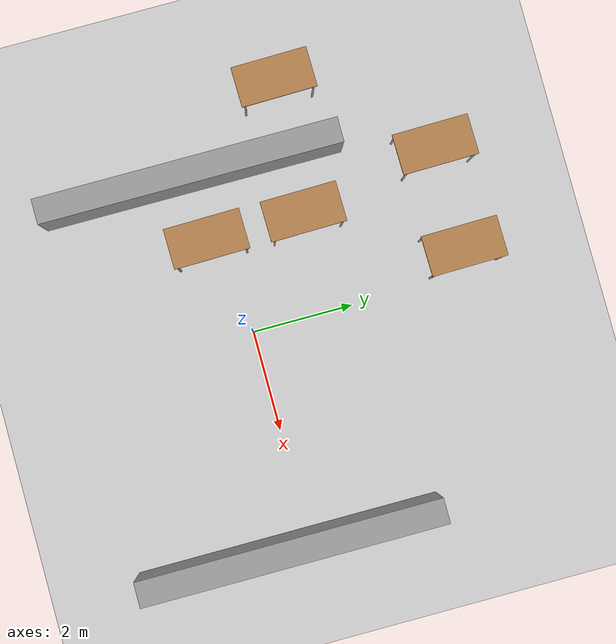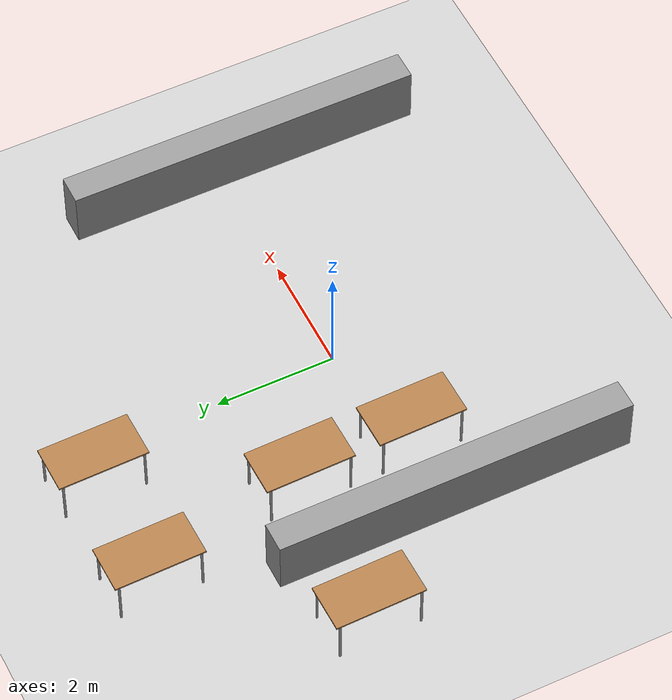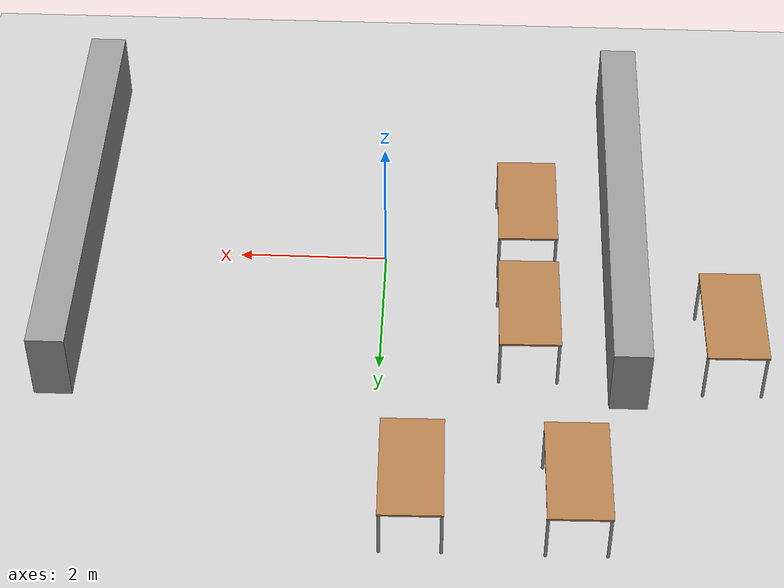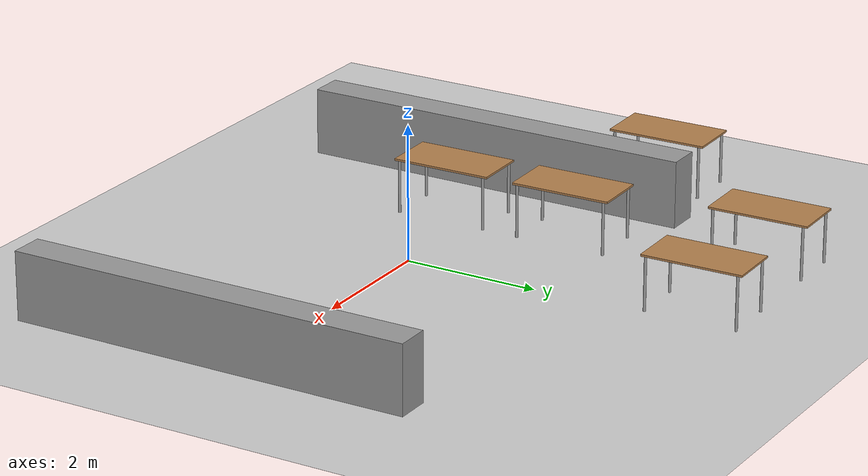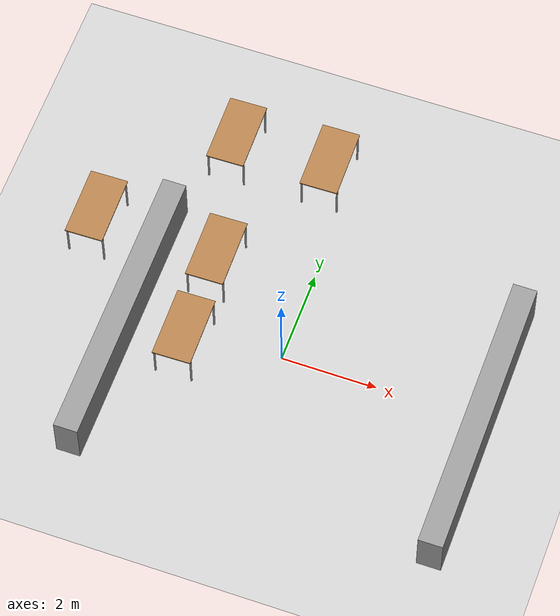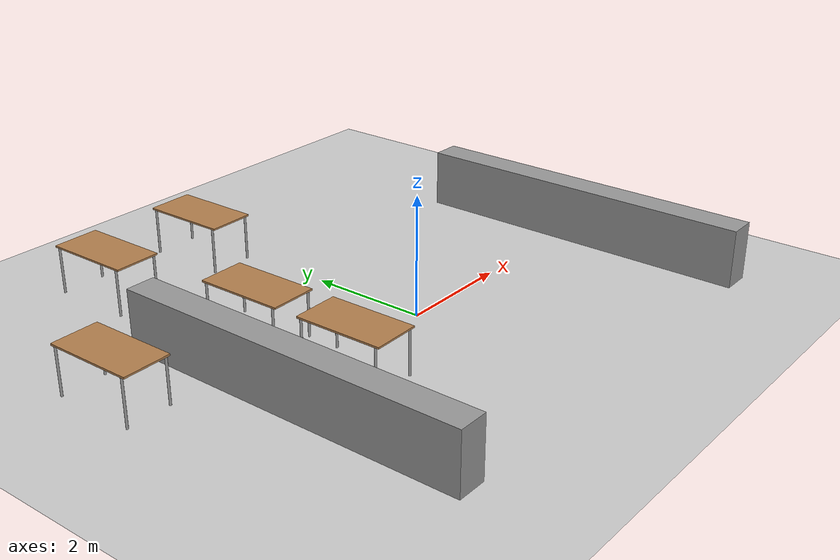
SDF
<sdf version="1.7">
 <world name="default">
  <model name="ground_plane">
   <static>1</static>
   <link name="link">
    <collision name="collision">
     <geometry><plane><normal>0 0 1</normal><size>100 100</size></plane></geometry>
     <surface>
      <contact><collide_bitmask>65535</collide_bitmask></contact>
      <friction><ode><mu>100</mu><mu2>50</mu2></ode></friction>
     </surface>
    </collision>
    <visual name="visual">
     <cast_shadows>0</cast_shadows>
     <geometry><plane><normal>0 0 1</normal><size>100 100</size></plane></geometry>
     <material>
      <script><uri>file://media/materials/scripts/gazebo.material</uri><name>Gazebo/Grey</name></script>
     </material>
    </visual>
   </link>
  </model>
  <model name="separador_pared">
   <pose>0.48579 -0.391509 0 0 -0 0</pose>
   <link name="Wall_0">
    <collision name="Wall_0_Collision">
     <geometry><box><size>6 0.5 1</size></box></geometry>
     <pose>0 0 0.5 0 -0 0</pose>
    </collision>
    <visual name="Wall_0_Visual">
     <pose>0 0 0.5 0 -0 0</pose>
     <geometry><box><size>6 0.5 1</size></box></geometry>
     <material>
      <script><uri>file://media/materials/scripts/gazebo.material</uri><name>Gazebo/Grey</name></script>
      <ambient>0.627451 0.580392 0.580392 1</ambient>
     </material>
     <meta><layer>0</layer></meta>
    </visual>
    <pose>3.7232 0.008937 0 0 -0 1.5708</pose>
   </link>
   <link name="Wall_2">
    <collision name="Wall_2_Collision">
     <geometry><box><size>6 0.5 1</size></box></geometry>
     <pose>0 0 0.5 0 -0 0</pose>
    </collision>
    <visual name="Wall_2_Visual">
     <pose>0 0 0.5 0 -0 0</pose>
     <geometry><box><size>6 0.5 1</size></box></geometry>
     <material>
      <script><uri>file://media/materials/scripts/gazebo.material</uri><name>Gazebo/Grey</name></script>
      <ambient>0.368627 0.360784 0.392157 1</ambient>
     </material>
     <meta><layer>0</layer></meta>
    </visual>
    <pose>-3.7232 -0.008937 0 0 -0 -1.5708</pose>
   </link>
   <static>1</static>
  </model>
  <model name="table_clone_clone_1">
   <link name="link">
    <inertial>
     <mass>1</mass>
     <pose>1.2 0 0.8 0 -0 0</pose>
     <inertia><ixx>1</ixx><ixy>0</ixy><ixz>0</ixz><iyy>1</iyy><iyz>0</iyz><izz>1</izz></inertia>
    </inertial>
    <visual name="back_right_leg">
     <pose>-0.68 -0.38 0.4 0 -0 0</pose>
     <geometry><cylinder><radius>0.02</radius><length>0.8</length></cylinder></geometry>
     <material>
      <script><uri>file://media/materials/scripts/gazebo.material</uri><name>Gazebo/Grey</name></script>
      <shader type="pixel"><normal_map>__default__</normal_map></shader>
      <ambient>0.3 0.3 0.3 1</ambient>
      <diffuse>0.7 0.7 0.7 1</diffuse>
      <specular>0.01 0.01 0.01 1</specular>
      <emissive>0 0 0 1</emissive>
     </material>
    </visual>
    <visual name="front_right_leg">
     <pose>0.68 -0.38 0.4 0 -0 0</pose>
     <geometry><cylinder><radius>0.02</radius><length>0.8</length></cylinder></geometry>
     <material>
      <script><uri>file://media/materials/scripts/gazebo.material</uri><name>Gazebo/Grey</name></script>
      <shader type="pixel"><normal_map>__default__</normal_map></shader>
      <ambient>0.3 0.3 0.3 1</ambient>
      <diffuse>0.7 0.7 0.7 1</diffuse>
      <specular>0.01 0.01 0.01 1</specular>
      <emissive>0 0 0 1</emissive>
     </material>
    </visual>
    <visual name="visual1">
     <pose>0 0 0.8 0 -0 0</pose>
     <geometry><box><size>1.5 0.8 0.03</size></box></geometry>
     <material>
      <script><uri>file://media/materials/scripts/gazebo.material</uri><name>Gazebo/Wood</name></script>
      <shader type="pixel"><normal_map>__default__</normal_map></shader>
      <ambient>1 1 1 1</ambient>
      <diffuse>1 1 1 1</diffuse>
      <specular>0.2 0.2 0.2 1</specular>
      <emissive>0 0 0 1</emissive>
     </material>
    </visual>
    <visual name="front_left_leg">
     <pose>0.68 0.38 0.4 0 -0 0</pose>
     <geometry><cylinder><radius>0.02</radius><length>0.8</length></cylinder></geometry>
     <material>
      <script><uri>file://media/materials/scripts/gazebo.material</uri><name>Gazebo/Grey</name></script>
      <shader type="pixel"><normal_map>__default__</normal_map></shader>
      <ambient>0.3 0.3 0.3 1</ambient>
      <diffuse>0.7 0.7 0.7 1</diffuse>
      <specular>0.01 0.01 0.01 1</specular>
      <emissive>0 0 0 1</emissive>
     </material>
    </visual>
    <visual name="back_left_leg">
     <pose>-0.68 0.38 0.4 0 -0 0</pose>
     <geometry><cylinder><radius>0.02</radius><length>0.8</length></cylinder></geometry>
     <material>
      <script><uri>file://media/materials/scripts/gazebo.material</uri><name>Gazebo/Grey</name></script>
      <shader type="pixel"><normal_map>__default__</normal_map></shader>
      <ambient>0.3 0.3 0.3 1</ambient>
      <diffuse>0.7 0.7 0.7 1</diffuse>
      <specular>0.01 0.01 0.01 1</specular>
      <emissive>0 0 0 1</emissive>
     </material>
    </visual>
    <collision name="back_right_leg">
     <pose>-0.68 -0.38 0.4 0 -0 0</pose>
     <geometry><cylinder><radius>0.02</radius><length>0.8</length></cylinder></geometry>
     <surface>
      <friction>
       <ode><mu>1</mu><mu2>1</mu2><fdir1>0 0 0</fdir1><slip1>0</slip1><slip2>0</slip2></ode>
       <torsional>
        <coefficient>1</coefficient>
        <patch_radius>0</patch_radius>
        <surface_radius>0</surface_radius>
        <use_patch_radius>1</use_patch_radius>
        <ode><slip>0</slip></ode>
       </torsional>
      </friction>
      <bounce><restitution_coefficient>0</restitution_coefficient><threshold>1e+06</threshold></bounce>
      <contact>
       <collide_without_contact>0</collide_without_contact>
       <collide_without_contact_bitmask>1</collide_without_contact_bitmask>
       <collide_bitmask>1</collide_bitmask>
       <ode>
        <soft_cfm>0</soft_cfm>
        <soft_erp>0.2</soft_erp>
        <kp>1e+13</kp>
        <kd>1</kd>
        <max_vel>0.01</max_vel>
        <min_depth>0</min_depth>
       </ode>
       <bullet>
        <split_impulse>1</split_impulse>
        <split_impulse_penetration_threshold>-0.01</split_impulse_penetration_threshold>
        <soft_cfm>0</soft_cfm>
        <soft_erp>0.2</soft_erp>
        <kp>1e+13</kp>
        <kd>1</kd>
       </bullet>
      </contact>
     </surface>
    </collision>
    <collision name="front_left_leg">
     <pose>0.68 0.38 0.4 0 -0 0</pose>
     <geometry><cylinder><radius>0.02</radius><length>0.8</length></cylinder></geometry>
     <surface>
      <friction>
       <ode><mu>1</mu><mu2>1</mu2><fdir1>0 0 0</fdir1><slip1>0</slip1><slip2>0</slip2></ode>
       <torsional>
        <coefficient>1</coefficient>
        <patch_radius>0</patch_radius>
        <surface_radius>0</surface_radius>
        <use_patch_radius>1</use_patch_radius>
        <ode><slip>0</slip></ode>
       </torsional>
      </friction>
      <bounce><restitution_coefficient>0</restitution_coefficient><threshold>1e+06</threshold></bounce>
      <contact>
       <collide_without_contact>0</collide_without_contact>
       <collide_without_contact_bitmask>1</collide_without_contact_bitmask>
       <collide_bitmask>1</collide_bitmask>
       <ode>
        <soft_cfm>0</soft_cfm>
        <soft_erp>0.2</soft_erp>
        <kp>1e+13</kp>
        <kd>1</kd>
        <max_vel>0.01</max_vel>
        <min_depth>0</min_depth>
       </ode>
       <bullet>
        <split_impulse>1</split_impulse>
        <split_impulse_penetration_threshold>-0.01</split_impulse_penetration_threshold>
        <soft_cfm>0</soft_cfm>
        <soft_erp>0.2</soft_erp>
        <kp>1e+13</kp>
        <kd>1</kd>
       </bullet>
      </contact>
     </surface>
    </collision>
    <collision name="back_left_leg">
     <pose>-0.68 0.38 0.4 0 -0 0</pose>
     <geometry><cylinder><radius>0.02</radius><length>0.8</length></cylinder></geometry>
     <surface>
      <friction>
       <ode><mu>1</mu><mu2>1</mu2><fdir1>0 0 0</fdir1><slip1>0</slip1><slip2>0</slip2></ode>
       <torsional>
        <coefficient>1</coefficient>
        <patch_radius>0</patch_radius>
        <surface_radius>0</surface_radius>
        <use_patch_radius>1</use_patch_radius>
        <ode><slip>0</slip></ode>
       </torsional>
      </friction>
      <bounce><restitution_coefficient>0</restitution_coefficient><threshold>1e+06</threshold></bounce>
      <contact>
       <collide_without_contact>0</collide_without_contact>
       <collide_without_contact_bitmask>1</collide_without_contact_bitmask>
       <collide_bitmask>1</collide_bitmask>
       <ode>
        <soft_cfm>0</soft_cfm>
        <soft_erp>0.2</soft_erp>
        <kp>1e+13</kp>
        <kd>1</kd>
        <max_vel>0.01</max_vel>
        <min_depth>0</min_depth>
       </ode>
       <bullet>
        <split_impulse>1</split_impulse>
        <split_impulse_penetration_threshold>-0.01</split_impulse_penetration_threshold>
        <soft_cfm>0</soft_cfm>
        <soft_erp>0.2</soft_erp>
        <kp>1e+13</kp>
        <kd>1</kd>
       </bullet>
      </contact>
     </surface>
    </collision>
    <collision name="surface">
     <pose>0 0 0.8 0 -0 0</pose>
     <geometry><box><size>1.5 0.8 0.03</size></box></geometry>
     <surface>
      <friction>
       <ode><mu>0.6</mu><mu2>0.6</mu2><fdir1>0 0 0</fdir1><slip1>0</slip1><slip2>0</slip2></ode>
       <torsional>
        <coefficient>1</coefficient>
        <patch_radius>0</patch_radius>
        <surface_radius>0</surface_radius>
        <use_patch_radius>1</use_patch_radius>
        <ode><slip>0</slip></ode>
       </torsional>
      </friction>
      <bounce><restitution_coefficient>0</restitution_coefficient><threshold>1e+06</threshold></bounce>
      <contact>
       <collide_without_contact>0</collide_without_contact>
       <collide_without_contact_bitmask>1</collide_without_contact_bitmask>
       <collide_bitmask>1</collide_bitmask>
       <ode>
        <soft_cfm>0</soft_cfm>
        <soft_erp>0.2</soft_erp>
        <kp>1e+13</kp>
        <kd>1</kd>
        <max_vel>0.01</max_vel>
        <min_depth>0</min_depth>
       </ode>
       <bullet>
        <split_impulse>1</split_impulse>
        <split_impulse_penetration_threshold>-0.01</split_impulse_penetration_threshold>
        <soft_cfm>0</soft_cfm>
        <soft_erp>0.2</soft_erp>
        <kp>1e+13</kp>
        <kd>1</kd>
       </bullet>
      </contact>
     </surface>
    </collision>
    <collision name="front_right_leg">
     <pose>0.68 -0.38 0.4 0 -0 0</pose>
     <geometry><cylinder><radius>0.02</radius><length>0.8</length></cylinder></geometry>
     <surface>
      <friction>
       <ode><mu>1</mu><mu2>1</mu2><fdir1>0 0 0</fdir1><slip1>0</slip1><slip2>0</slip2></ode>
       <torsional>
        <coefficient>1</coefficient>
        <patch_radius>0</patch_radius>
        <surface_radius>0</surface_radius>
        <use_patch_radius>1</use_patch_radius>
        <ode><slip>0</slip></ode>
       </torsional>
      </friction>
      <bounce><restitution_coefficient>0</restitution_coefficient><threshold>1e+06</threshold></bounce>
      <contact>
       <collide_without_contact>0</collide_without_contact>
       <collide_without_contact_bitmask>1</collide_without_contact_bitmask>
       <collide_bitmask>1</collide_bitmask>
       <ode>
        <soft_cfm>0</soft_cfm>
        <soft_erp>0.2</soft_erp>
        <kp>1e+13</kp>
        <kd>1</kd>
        <max_vel>0.01</max_vel>
        <min_depth>0</min_depth>
       </ode>
       <bullet>
        <split_impulse>1</split_impulse>
        <split_impulse_penetration_threshold>-0.01</split_impulse_penetration_threshold>
        <soft_cfm>0</soft_cfm>
        <soft_erp>0.2</soft_erp>
        <kp>1e+13</kp>
        <kd>1</kd>
       </bullet>
      </contact>
     </surface>
    </collision>
   </link>
   <static>1</static>
   <pose>-2.51872 4.29115 0 0 0 -1.55553</pose>
  </model>
  <model name="table_clone_clone_2">
   <link name="link">
    <inertial>
     <mass>1</mass>
     <pose>1.2 0 0.8 0 -0 0</pose>
     <inertia><ixx>1</ixx><ixy>0</ixy><ixz>0</ixz><iyy>1</iyy><iyz>0</iyz><izz>1</izz></inertia>
    </inertial>
    <visual name="back_right_leg">
     <pose>-0.68 -0.38 0.4 0 -0 0</pose>
     <geometry><cylinder><radius>0.02</radius><length>0.8</length></cylinder></geometry>
     <material>
      <script><uri>file://media/materials/scripts/gazebo.material</uri><name>Gazebo/Grey</name></script>
      <shader type="pixel"><normal_map>__default__</normal_map></shader>
      <ambient>0.3 0.3 0.3 1</ambient>
      <diffuse>0.7 0.7 0.7 1</diffuse>
      <specular>0.01 0.01 0.01 1</specular>
      <emissive>0 0 0 1</emissive>
     </material>
    </visual>
    <visual name="front_right_leg">
     <pose>0.68 -0.38 0.4 0 -0 0</pose>
     <geometry><cylinder><radius>0.02</radius><length>0.8</length></cylinder></geometry>
     <material>
      <script><uri>file://media/materials/scripts/gazebo.material</uri><name>Gazebo/Grey</name></script>
      <shader type="pixel"><normal_map>__default__</normal_map></shader>
      <ambient>0.3 0.3 0.3 1</ambient>
      <diffuse>0.7 0.7 0.7 1</diffuse>
      <specular>0.01 0.01 0.01 1</specular>
      <emissive>0 0 0 1</emissive>
     </material>
    </visual>
    <visual name="visual1">
     <pose>0 0 0.8 0 -0 0</pose>
     <geometry><box><size>1.5 0.8 0.03</size></box></geometry>
     <material>
      <script><uri>file://media/materials/scripts/gazebo.material</uri><name>Gazebo/Wood</name></script>
      <shader type="pixel"><normal_map>__default__</normal_map></shader>
      <ambient>1 1 1 1</ambient>
      <diffuse>1 1 1 1</diffuse>
      <specular>0.2 0.2 0.2 1</specular>
      <emissive>0 0 0 1</emissive>
     </material>
    </visual>
    <visual name="front_left_leg">
     <pose>0.68 0.38 0.4 0 -0 0</pose>
     <geometry><cylinder><radius>0.02</radius><length>0.8</length></cylinder></geometry>
     <material>
      <script><uri>file://media/materials/scripts/gazebo.material</uri><name>Gazebo/Grey</name></script>
      <shader type="pixel"><normal_map>__default__</normal_map></shader>
      <ambient>0.3 0.3 0.3 1</ambient>
      <diffuse>0.7 0.7 0.7 1</diffuse>
      <specular>0.01 0.01 0.01 1</specular>
      <emissive>0 0 0 1</emissive>
     </material>
    </visual>
    <visual name="back_left_leg">
     <pose>-0.68 0.38 0.4 0 -0 0</pose>
     <geometry><cylinder><radius>0.02</radius><length>0.8</length></cylinder></geometry>
     <material>
      <script><uri>file://media/materials/scripts/gazebo.material</uri><name>Gazebo/Grey</name></script>
      <shader type="pixel"><normal_map>__default__</normal_map></shader>
      <ambient>0.3 0.3 0.3 1</ambient>
      <diffuse>0.7 0.7 0.7 1</diffuse>
      <specular>0.01 0.01 0.01 1</specular>
      <emissive>0 0 0 1</emissive>
     </material>
    </visual>
    <collision name="back_right_leg">
     <pose>-0.68 -0.38 0.4 0 -0 0</pose>
     <geometry><cylinder><radius>0.02</radius><length>0.8</length></cylinder></geometry>
     <surface>
      <friction>
       <ode><mu>1</mu><mu2>1</mu2><fdir1>0 0 0</fdir1><slip1>0</slip1><slip2>0</slip2></ode>
       <torsional>
        <coefficient>1</coefficient>
        <patch_radius>0</patch_radius>
        <surface_radius>0</surface_radius>
        <use_patch_radius>1</use_patch_radius>
        <ode><slip>0</slip></ode>
       </torsional>
      </friction>
      <bounce><restitution_coefficient>0</restitution_coefficient><threshold>1e+06</threshold></bounce>
      <contact>
       <collide_without_contact>0</collide_without_contact>
       <collide_without_contact_bitmask>1</collide_without_contact_bitmask>
       <collide_bitmask>1</collide_bitmask>
       <ode>
        <soft_cfm>0</soft_cfm>
        <soft_erp>0.2</soft_erp>
        <kp>1e+13</kp>
        <kd>1</kd>
        <max_vel>0.01</max_vel>
        <min_depth>0</min_depth>
       </ode>
       <bullet>
        <split_impulse>1</split_impulse>
        <split_impulse_penetration_threshold>-0.01</split_impulse_penetration_threshold>
        <soft_cfm>0</soft_cfm>
        <soft_erp>0.2</soft_erp>
        <kp>1e+13</kp>
        <kd>1</kd>
       </bullet>
      </contact>
     </surface>
    </collision>
    <collision name="front_left_leg">
     <pose>0.68 0.38 0.4 0 -0 0</pose>
     <geometry><cylinder><radius>0.02</radius><length>0.8</length></cylinder></geometry>
     <surface>
      <friction>
       <ode><mu>1</mu><mu2>1</mu2><fdir1>0 0 0</fdir1><slip1>0</slip1><slip2>0</slip2></ode>
       <torsional>
        <coefficient>1</coefficient>
        <patch_radius>0</patch_radius>
        <surface_radius>0</surface_radius>
        <use_patch_radius>1</use_patch_radius>
        <ode><slip>0</slip></ode>
       </torsional>
      </friction>
      <bounce><restitution_coefficient>0</restitution_coefficient><threshold>1e+06</threshold></bounce>
      <contact>
       <collide_without_contact>0</collide_without_contact>
       <collide_without_contact_bitmask>1</collide_without_contact_bitmask>
       <collide_bitmask>1</collide_bitmask>
       <ode>
        <soft_cfm>0</soft_cfm>
        <soft_erp>0.2</soft_erp>
        <kp>1e+13</kp>
        <kd>1</kd>
        <max_vel>0.01</max_vel>
        <min_depth>0</min_depth>
       </ode>
       <bullet>
        <split_impulse>1</split_impulse>
        <split_impulse_penetration_threshold>-0.01</split_impulse_penetration_threshold>
        <soft_cfm>0</soft_cfm>
        <soft_erp>0.2</soft_erp>
        <kp>1e+13</kp>
        <kd>1</kd>
       </bullet>
      </contact>
     </surface>
    </collision>
    <collision name="back_left_leg">
     <pose>-0.68 0.38 0.4 0 -0 0</pose>
     <geometry><cylinder><radius>0.02</radius><length>0.8</length></cylinder></geometry>
     <surface>
      <friction>
       <ode><mu>1</mu><mu2>1</mu2><fdir1>0 0 0</fdir1><slip1>0</slip1><slip2>0</slip2></ode>
       <torsional>
        <coefficient>1</coefficient>
        <patch_radius>0</patch_radius>
        <surface_radius>0</surface_radius>
        <use_patch_radius>1</use_patch_radius>
        <ode><slip>0</slip></ode>
       </torsional>
      </friction>
      <bounce><restitution_coefficient>0</restitution_coefficient><threshold>1e+06</threshold></bounce>
      <contact>
       <collide_without_contact>0</collide_without_contact>
       <collide_without_contact_bitmask>1</collide_without_contact_bitmask>
       <collide_bitmask>1</collide_bitmask>
       <ode>
        <soft_cfm>0</soft_cfm>
        <soft_erp>0.2</soft_erp>
        <kp>1e+13</kp>
        <kd>1</kd>
        <max_vel>0.01</max_vel>
        <min_depth>0</min_depth>
       </ode>
       <bullet>
        <split_impulse>1</split_impulse>
        <split_impulse_penetration_threshold>-0.01</split_impulse_penetration_threshold>
        <soft_cfm>0</soft_cfm>
        <soft_erp>0.2</soft_erp>
        <kp>1e+13</kp>
        <kd>1</kd>
       </bullet>
      </contact>
     </surface>
    </collision>
    <collision name="surface">
     <pose>0 0 0.8 0 -0 0</pose>
     <geometry><box><size>1.5 0.8 0.03</size></box></geometry>
     <surface>
      <friction>
       <ode><mu>0.6</mu><mu2>0.6</mu2><fdir1>0 0 0</fdir1><slip1>0</slip1><slip2>0</slip2></ode>
       <torsional>
        <coefficient>1</coefficient>
        <patch_radius>0</patch_radius>
        <surface_radius>0</surface_radius>
        <use_patch_radius>1</use_patch_radius>
        <ode><slip>0</slip></ode>
       </torsional>
      </friction>
      <bounce><restitution_coefficient>0</restitution_coefficient><threshold>1e+06</threshold></bounce>
      <contact>
       <collide_without_contact>0</collide_without_contact>
       <collide_without_contact_bitmask>1</collide_without_contact_bitmask>
       <collide_bitmask>1</collide_bitmask>
       <ode>
        <soft_cfm>0</soft_cfm>
        <soft_erp>0.2</soft_erp>
        <kp>1e+13</kp>
        <kd>1</kd>
        <max_vel>0.01</max_vel>
        <min_depth>0</min_depth>
       </ode>
       <bullet>
        <split_impulse>1</split_impulse>
        <split_impulse_penetration_threshold>-0.01</split_impulse_penetration_threshold>
        <soft_cfm>0</soft_cfm>
        <soft_erp>0.2</soft_erp>
        <kp>1e+13</kp>
        <kd>1</kd>
       </bullet>
      </contact>
     </surface>
    </collision>
    <collision name="front_right_leg">
     <pose>0.68 -0.38 0.4 0 -0 0</pose>
     <geometry><cylinder><radius>0.02</radius><length>0.8</length></cylinder></geometry>
     <surface>
      <friction>
       <ode><mu>1</mu><mu2>1</mu2><fdir1>0 0 0</fdir1><slip1>0</slip1><slip2>0</slip2></ode>
       <torsional>
        <coefficient>1</coefficient>
        <patch_radius>0</patch_radius>
        <surface_radius>0</surface_radius>
        <use_patch_radius>1</use_patch_radius>
        <ode><slip>0</slip></ode>
       </torsional>
      </friction>
      <bounce><restitution_coefficient>0</restitution_coefficient><threshold>1e+06</threshold></bounce>
      <contact>
       <collide_without_contact>0</collide_without_contact>
       <collide_without_contact_bitmask>1</collide_without_contact_bitmask>
       <collide_bitmask>1</collide_bitmask>
       <ode>
        <soft_cfm>0</soft_cfm>
        <soft_erp>0.2</soft_erp>
        <kp>1e+13</kp>
        <kd>1</kd>
        <max_vel>0.01</max_vel>
        <min_depth>0</min_depth>
       </ode>
       <bullet>
        <split_impulse>1</split_impulse>
        <split_impulse_penetration_threshold>-0.01</split_impulse_penetration_threshold>
        <soft_cfm>0</soft_cfm>
        <soft_erp>0.2</soft_erp>
        <kp>1e+13</kp>
        <kd>1</kd>
       </bullet>
      </contact>
     </surface>
    </collision>
   </link>
   <static>1</static>
   <pose>-1.93807 1.51938 0 0 0 -1.55553</pose>
  </model>
  <model name="table_clone_clone_3">
   <link name="link">
    <inertial>
     <mass>1</mass>
     <pose>1.2 0 0.8 0 -0 0</pose>
     <inertia><ixx>1</ixx><ixy>0</ixy><ixz>0</ixz><iyy>1</iyy><iyz>0</iyz><izz>1</izz></inertia>
    </inertial>
    <visual name="back_right_leg">
     <pose>-0.68 -0.38 0.4 0 -0 0</pose>
     <geometry><cylinder><radius>0.02</radius><length>0.8</length></cylinder></geometry>
     <material>
      <script><uri>file://media/materials/scripts/gazebo.material</uri><name>Gazebo/Grey</name></script>
      <shader type="pixel"><normal_map>__default__</normal_map></shader>
      <ambient>0.3 0.3 0.3 1</ambient>
      <diffuse>0.7 0.7 0.7 1</diffuse>
      <specular>0.01 0.01 0.01 1</specular>
      <emissive>0 0 0 1</emissive>
     </material>
    </visual>
    <visual name="front_right_leg">
     <pose>0.68 -0.38 0.4 0 -0 0</pose>
     <geometry><cylinder><radius>0.02</radius><length>0.8</length></cylinder></geometry>
     <material>
      <script><uri>file://media/materials/scripts/gazebo.material</uri><name>Gazebo/Grey</name></script>
      <shader type="pixel"><normal_map>__default__</normal_map></shader>
      <ambient>0.3 0.3 0.3 1</ambient>
      <diffuse>0.7 0.7 0.7 1</diffuse>
      <specular>0.01 0.01 0.01 1</specular>
      <emissive>0 0 0 1</emissive>
     </material>
    </visual>
    <visual name="visual1">
     <pose>0 0 0.8 0 -0 0</pose>
     <geometry><box><size>1.5 0.8 0.03</size></box></geometry>
     <material>
      <script><uri>file://media/materials/scripts/gazebo.material</uri><name>Gazebo/Wood</name></script>
      <shader type="pixel"><normal_map>__default__</normal_map></shader>
      <ambient>1 1 1 1</ambient>
      <diffuse>1 1 1 1</diffuse>
      <specular>0.2 0.2 0.2 1</specular>
      <emissive>0 0 0 1</emissive>
     </material>
    </visual>
    <visual name="front_left_leg">
     <pose>0.68 0.38 0.4 0 -0 0</pose>
     <geometry><cylinder><radius>0.02</radius><length>0.8</length></cylinder></geometry>
     <material>
      <script><uri>file://media/materials/scripts/gazebo.material</uri><name>Gazebo/Grey</name></script>
      <shader type="pixel"><normal_map>__default__</normal_map></shader>
      <ambient>0.3 0.3 0.3 1</ambient>
      <diffuse>0.7 0.7 0.7 1</diffuse>
      <specular>0.01 0.01 0.01 1</specular>
      <emissive>0 0 0 1</emissive>
     </material>
    </visual>
    <visual name="back_left_leg">
     <pose>-0.68 0.38 0.4 0 -0 0</pose>
     <geometry><cylinder><radius>0.02</radius><length>0.8</length></cylinder></geometry>
     <material>
      <script><uri>file://media/materials/scripts/gazebo.material</uri><name>Gazebo/Grey</name></script>
      <shader type="pixel"><normal_map>__default__</normal_map></shader>
      <ambient>0.3 0.3 0.3 1</ambient>
      <diffuse>0.7 0.7 0.7 1</diffuse>
      <specular>0.01 0.01 0.01 1</specular>
      <emissive>0 0 0 1</emissive>
     </material>
    </visual>
    <collision name="back_right_leg">
     <pose>-0.68 -0.38 0.4 0 -0 0</pose>
     <geometry><cylinder><radius>0.02</radius><length>0.8</length></cylinder></geometry>
     <surface>
      <friction>
       <ode><mu>1</mu><mu2>1</mu2><fdir1>0 0 0</fdir1><slip1>0</slip1><slip2>0</slip2></ode>
       <torsional>
        <coefficient>1</coefficient>
        <patch_radius>0</patch_radius>
        <surface_radius>0</surface_radius>
        <use_patch_radius>1</use_patch_radius>
        <ode><slip>0</slip></ode>
       </torsional>
      </friction>
      <bounce><restitution_coefficient>0</restitution_coefficient><threshold>1e+06</threshold></bounce>
      <contact>
       <collide_without_contact>0</collide_without_contact>
       <collide_without_contact_bitmask>1</collide_without_contact_bitmask>
       <collide_bitmask>1</collide_bitmask>
       <ode>
        <soft_cfm>0</soft_cfm>
        <soft_erp>0.2</soft_erp>
        <kp>1e+13</kp>
        <kd>1</kd>
        <max_vel>0.01</max_vel>
        <min_depth>0</min_depth>
       </ode>
       <bullet>
        <split_impulse>1</split_impulse>
        <split_impulse_penetration_threshold>-0.01</split_impulse_penetration_threshold>
        <soft_cfm>0</soft_cfm>
        <soft_erp>0.2</soft_erp>
        <kp>1e+13</kp>
        <kd>1</kd>
       </bullet>
      </contact>
     </surface>
    </collision>
    <collision name="front_left_leg">
     <pose>0.68 0.38 0.4 0 -0 0</pose>
     <geometry><cylinder><radius>0.02</radius><length>0.8</length></cylinder></geometry>
     <surface>
      <friction>
       <ode><mu>1</mu><mu2>1</mu2><fdir1>0 0 0</fdir1><slip1>0</slip1><slip2>0</slip2></ode>
       <torsional>
        <coefficient>1</coefficient>
        <patch_radius>0</patch_radius>
        <surface_radius>0</surface_radius>
        <use_patch_radius>1</use_patch_radius>
        <ode><slip>0</slip></ode>
       </torsional>
      </friction>
      <bounce><restitution_coefficient>0</restitution_coefficient><threshold>1e+06</threshold></bounce>
      <contact>
       <collide_without_contact>0</collide_without_contact>
       <collide_without_contact_bitmask>1</collide_without_contact_bitmask>
       <collide_bitmask>1</collide_bitmask>
       <ode>
        <soft_cfm>0</soft_cfm>
        <soft_erp>0.2</soft_erp>
        <kp>1e+13</kp>
        <kd>1</kd>
        <max_vel>0.01</max_vel>
        <min_depth>0</min_depth>
       </ode>
       <bullet>
        <split_impulse>1</split_impulse>
        <split_impulse_penetration_threshold>-0.01</split_impulse_penetration_threshold>
        <soft_cfm>0</soft_cfm>
        <soft_erp>0.2</soft_erp>
        <kp>1e+13</kp>
        <kd>1</kd>
       </bullet>
      </contact>
     </surface>
    </collision>
    <collision name="back_left_leg">
     <pose>-0.68 0.38 0.4 0 -0 0</pose>
     <geometry><cylinder><radius>0.02</radius><length>0.8</length></cylinder></geometry>
     <surface>
      <friction>
       <ode><mu>1</mu><mu2>1</mu2><fdir1>0 0 0</fdir1><slip1>0</slip1><slip2>0</slip2></ode>
       <torsional>
        <coefficient>1</coefficient>
        <patch_radius>0</patch_radius>
        <surface_radius>0</surface_radius>
        <use_patch_radius>1</use_patch_radius>
        <ode><slip>0</slip></ode>
       </torsional>
      </friction>
      <bounce><restitution_coefficient>0</restitution_coefficient><threshold>1e+06</threshold></bounce>
      <contact>
       <collide_without_contact>0</collide_without_contact>
       <collide_without_contact_bitmask>1</collide_without_contact_bitmask>
       <collide_bitmask>1</collide_bitmask>
       <ode>
        <soft_cfm>0</soft_cfm>
        <soft_erp>0.2</soft_erp>
        <kp>1e+13</kp>
        <kd>1</kd>
        <max_vel>0.01</max_vel>
        <min_depth>0</min_depth>
       </ode>
       <bullet>
        <split_impulse>1</split_impulse>
        <split_impulse_penetration_threshold>-0.01</split_impulse_penetration_threshold>
        <soft_cfm>0</soft_cfm>
        <soft_erp>0.2</soft_erp>
        <kp>1e+13</kp>
        <kd>1</kd>
       </bullet>
      </contact>
     </surface>
    </collision>
    <collision name="surface">
     <pose>0 0 0.8 0 -0 0</pose>
     <geometry><box><size>1.5 0.8 0.03</size></box></geometry>
     <surface>
      <friction>
       <ode><mu>0.6</mu><mu2>0.6</mu2><fdir1>0 0 0</fdir1><slip1>0</slip1><slip2>0</slip2></ode>
       <torsional>
        <coefficient>1</coefficient>
        <patch_radius>0</patch_radius>
        <surface_radius>0</surface_radius>
        <use_patch_radius>1</use_patch_radius>
        <ode><slip>0</slip></ode>
       </torsional>
      </friction>
      <bounce><restitution_coefficient>0</restitution_coefficient><threshold>1e+06</threshold></bounce>
      <contact>
       <collide_without_contact>0</collide_without_contact>
       <collide_without_contact_bitmask>1</collide_without_contact_bitmask>
       <collide_bitmask>1</collide_bitmask>
       <ode>
        <soft_cfm>0</soft_cfm>
        <soft_erp>0.2</soft_erp>
        <kp>1e+13</kp>
        <kd>1</kd>
        <max_vel>0.01</max_vel>
        <min_depth>0</min_depth>
       </ode>
       <bullet>
        <split_impulse>1</split_impulse>
        <split_impulse_penetration_threshold>-0.01</split_impulse_penetration_threshold>
        <soft_cfm>0</soft_cfm>
        <soft_erp>0.2</soft_erp>
        <kp>1e+13</kp>
        <kd>1</kd>
       </bullet>
      </contact>
     </surface>
    </collision>
    <collision name="front_right_leg">
     <pose>0.68 -0.38 0.4 0 -0 0</pose>
     <geometry><cylinder><radius>0.02</radius><length>0.8</length></cylinder></geometry>
     <surface>
      <friction>
       <ode><mu>1</mu><mu2>1</mu2><fdir1>0 0 0</fdir1><slip1>0</slip1><slip2>0</slip2></ode>
       <torsional>
        <coefficient>1</coefficient>
        <patch_radius>0</patch_radius>
        <surface_radius>0</surface_radius>
        <use_patch_radius>1</use_patch_radius>
        <ode><slip>0</slip></ode>
       </torsional>
      </friction>
      <bounce><restitution_coefficient>0</restitution_coefficient><threshold>1e+06</threshold></bounce>
      <contact>
       <collide_without_contact>0</collide_without_contact>
       <collide_without_contact_bitmask>1</collide_without_contact_bitmask>
       <collide_bitmask>1</collide_bitmask>
       <ode>
        <soft_cfm>0</soft_cfm>
        <soft_erp>0.2</soft_erp>
        <kp>1e+13</kp>
        <kd>1</kd>
        <max_vel>0.01</max_vel>
        <min_depth>0</min_depth>
       </ode>
       <bullet>
        <split_impulse>1</split_impulse>
        <split_impulse_penetration_threshold>-0.01</split_impulse_penetration_threshold>
        <soft_cfm>0</soft_cfm>
        <soft_erp>0.2</soft_erp>
        <kp>1e+13</kp>
        <kd>1</kd>
       </bullet>
      </contact>
     </surface>
    </collision>
   </link>
   <static>1</static>
   <pose>-1.91664 -0.397328 0 0 0 -1.55553</pose>
  </model>
  <model name="table_clone_clone_7">
   <link name="link">
    <inertial>
     <mass>1</mass>
     <pose>1.2 0 0.8 0 -0 0</pose>
     <inertia><ixx>1</ixx><ixy>0</ixy><ixz>0</ixz><iyy>1</iyy><iyz>0</iyz><izz>1</izz></inertia>
    </inertial>
    <visual name="back_right_leg">
     <pose>-0.68 -0.38 0.4 0 -0 0</pose>
     <geometry><cylinder><radius>0.02</radius><length>0.8</length></cylinder></geometry>
     <material>
      <script><uri>file://media/materials/scripts/gazebo.material</uri><name>Gazebo/Grey</name></script>
      <shader type="pixel"><normal_map>__default__</normal_map></shader>
      <ambient>0.3 0.3 0.3 1</ambient>
      <diffuse>0.7 0.7 0.7 1</diffuse>
      <specular>0.01 0.01 0.01 1</specular>
      <emissive>0 0 0 1</emissive>
     </material>
    </visual>
    <visual name="front_right_leg">
     <pose>0.68 -0.38 0.4 0 -0 0</pose>
     <geometry><cylinder><radius>0.02</radius><length>0.8</length></cylinder></geometry>
     <material>
      <script><uri>file://media/materials/scripts/gazebo.material</uri><name>Gazebo/Grey</name></script>
      <shader type="pixel"><normal_map>__default__</normal_map></shader>
      <ambient>0.3 0.3 0.3 1</ambient>
      <diffuse>0.7 0.7 0.7 1</diffuse>
      <specular>0.01 0.01 0.01 1</specular>
      <emissive>0 0 0 1</emissive>
     </material>
    </visual>
    <visual name="visual1">
     <pose>0 0 0.8 0 -0 0</pose>
     <geometry><box><size>1.5 0.8 0.03</size></box></geometry>
     <material>
      <script><uri>file://media/materials/scripts/gazebo.material</uri><name>Gazebo/Wood</name></script>
      <shader type="pixel"><normal_map>__default__</normal_map></shader>
      <ambient>1 1 1 1</ambient>
      <diffuse>1 1 1 1</diffuse>
      <specular>0.2 0.2 0.2 1</specular>
      <emissive>0 0 0 1</emissive>
     </material>
    </visual>
    <visual name="front_left_leg">
     <pose>0.68 0.38 0.4 0 -0 0</pose>
     <geometry><cylinder><radius>0.02</radius><length>0.8</length></cylinder></geometry>
     <material>
      <script><uri>file://media/materials/scripts/gazebo.material</uri><name>Gazebo/Grey</name></script>
      <shader type="pixel"><normal_map>__default__</normal_map></shader>
      <ambient>0.3 0.3 0.3 1</ambient>
      <diffuse>0.7 0.7 0.7 1</diffuse>
      <specular>0.01 0.01 0.01 1</specular>
      <emissive>0 0 0 1</emissive>
     </material>
    </visual>
    <visual name="back_left_leg">
     <pose>-0.68 0.38 0.4 0 -0 0</pose>
     <geometry><cylinder><radius>0.02</radius><length>0.8</length></cylinder></geometry>
     <material>
      <script><uri>file://media/materials/scripts/gazebo.material</uri><name>Gazebo/Grey</name></script>
      <shader type="pixel"><normal_map>__default__</normal_map></shader>
      <ambient>0.3 0.3 0.3 1</ambient>
      <diffuse>0.7 0.7 0.7 1</diffuse>
      <specular>0.01 0.01 0.01 1</specular>
      <emissive>0 0 0 1</emissive>
     </material>
    </visual>
    <collision name="back_right_leg">
     <pose>-0.68 -0.38 0.4 0 -0 0</pose>
     <geometry><cylinder><radius>0.02</radius><length>0.8</length></cylinder></geometry>
     <surface>
      <friction>
       <ode><mu>1</mu><mu2>1</mu2><fdir1>0 0 0</fdir1><slip1>0</slip1><slip2>0</slip2></ode>
       <torsional>
        <coefficient>1</coefficient>
        <patch_radius>0</patch_radius>
        <surface_radius>0</surface_radius>
        <use_patch_radius>1</use_patch_radius>
        <ode><slip>0</slip></ode>
       </torsional>
      </friction>
      <bounce><restitution_coefficient>0</restitution_coefficient><threshold>1e+06</threshold></bounce>
      <contact>
       <collide_without_contact>0</collide_without_contact>
       <collide_without_contact_bitmask>1</collide_without_contact_bitmask>
       <collide_bitmask>1</collide_bitmask>
       <ode>
        <soft_cfm>0</soft_cfm>
        <soft_erp>0.2</soft_erp>
        <kp>1e+13</kp>
        <kd>1</kd>
        <max_vel>0.01</max_vel>
        <min_depth>0</min_depth>
       </ode>
       <bullet>
        <split_impulse>1</split_impulse>
        <split_impulse_penetration_threshold>-0.01</split_impulse_penetration_threshold>
        <soft_cfm>0</soft_cfm>
        <soft_erp>0.2</soft_erp>
        <kp>1e+13</kp>
        <kd>1</kd>
       </bullet>
      </contact>
     </surface>
    </collision>
    <collision name="front_left_leg">
     <pose>0.68 0.38 0.4 0 -0 0</pose>
     <geometry><cylinder><radius>0.02</radius><length>0.8</length></cylinder></geometry>
     <surface>
      <friction>
       <ode><mu>1</mu><mu2>1</mu2><fdir1>0 0 0</fdir1><slip1>0</slip1><slip2>0</slip2></ode>
       <torsional>
        <coefficient>1</coefficient>
        <patch_radius>0</patch_radius>
        <surface_radius>0</surface_radius>
        <use_patch_radius>1</use_patch_radius>
        <ode><slip>0</slip></ode>
       </torsional>
      </friction>
      <bounce><restitution_coefficient>0</restitution_coefficient><threshold>1e+06</threshold></bounce>
      <contact>
       <collide_without_contact>0</collide_without_contact>
       <collide_without_contact_bitmask>1</collide_without_contact_bitmask>
       <collide_bitmask>1</collide_bitmask>
       <ode>
        <soft_cfm>0</soft_cfm>
        <soft_erp>0.2</soft_erp>
        <kp>1e+13</kp>
        <kd>1</kd>
        <max_vel>0.01</max_vel>
        <min_depth>0</min_depth>
       </ode>
       <bullet>
        <split_impulse>1</split_impulse>
        <split_impulse_penetration_threshold>-0.01</split_impulse_penetration_threshold>
        <soft_cfm>0</soft_cfm>
        <soft_erp>0.2</soft_erp>
        <kp>1e+13</kp>
        <kd>1</kd>
       </bullet>
      </contact>
     </surface>
    </collision>
    <collision name="back_left_leg">
     <pose>-0.68 0.38 0.4 0 -0 0</pose>
     <geometry><cylinder><radius>0.02</radius><length>0.8</length></cylinder></geometry>
     <surface>
      <friction>
       <ode><mu>1</mu><mu2>1</mu2><fdir1>0 0 0</fdir1><slip1>0</slip1><slip2>0</slip2></ode>
       <torsional>
        <coefficient>1</coefficient>
        <patch_radius>0</patch_radius>
        <surface_radius>0</surface_radius>
        <use_patch_radius>1</use_patch_radius>
        <ode><slip>0</slip></ode>
       </torsional>
      </friction>
      <bounce><restitution_coefficient>0</restitution_coefficient><threshold>1e+06</threshold></bounce>
      <contact>
       <collide_without_contact>0</collide_without_contact>
       <collide_without_contact_bitmask>1</collide_without_contact_bitmask>
       <collide_bitmask>1</collide_bitmask>
       <ode>
        <soft_cfm>0</soft_cfm>
        <soft_erp>0.2</soft_erp>
        <kp>1e+13</kp>
        <kd>1</kd>
        <max_vel>0.01</max_vel>
        <min_depth>0</min_depth>
       </ode>
       <bullet>
        <split_impulse>1</split_impulse>
        <split_impulse_penetration_threshold>-0.01</split_impulse_penetration_threshold>
        <soft_cfm>0</soft_cfm>
        <soft_erp>0.2</soft_erp>
        <kp>1e+13</kp>
        <kd>1</kd>
       </bullet>
      </contact>
     </surface>
    </collision>
    <collision name="surface">
     <pose>0 0 0.8 0 -0 0</pose>
     <geometry><box><size>1.5 0.8 0.03</size></box></geometry>
     <surface>
      <friction>
       <ode><mu>0.6</mu><mu2>0.6</mu2><fdir1>0 0 0</fdir1><slip1>0</slip1><slip2>0</slip2></ode>
       <torsional>
        <coefficient>1</coefficient>
        <patch_radius>0</patch_radius>
        <surface_radius>0</surface_radius>
        <use_patch_radius>1</use_patch_radius>
        <ode><slip>0</slip></ode>
       </torsional>
      </friction>
      <bounce><restitution_coefficient>0</restitution_coefficient><threshold>1e+06</threshold></bounce>
      <contact>
       <collide_without_contact>0</collide_without_contact>
       <collide_without_contact_bitmask>1</collide_without_contact_bitmask>
       <collide_bitmask>1</collide_bitmask>
       <ode>
        <soft_cfm>0</soft_cfm>
        <soft_erp>0.2</soft_erp>
        <kp>1e+13</kp>
        <kd>1</kd>
        <max_vel>0.01</max_vel>
        <min_depth>0</min_depth>
       </ode>
       <bullet>
        <split_impulse>1</split_impulse>
        <split_impulse_penetration_threshold>-0.01</split_impulse_penetration_threshold>
        <soft_cfm>0</soft_cfm>
        <soft_erp>0.2</soft_erp>
        <kp>1e+13</kp>
        <kd>1</kd>
       </bullet>
      </contact>
     </surface>
    </collision>
    <collision name="front_right_leg">
     <pose>0.68 -0.38 0.4 0 -0 0</pose>
     <geometry><cylinder><radius>0.02</radius><length>0.8</length></cylinder></geometry>
     <surface>
      <friction>
       <ode><mu>1</mu><mu2>1</mu2><fdir1>0 0 0</fdir1><slip1>0</slip1><slip2>0</slip2></ode>
       <torsional>
        <coefficient>1</coefficient>
        <patch_radius>0</patch_radius>
        <surface_radius>0</surface_radius>
        <use_patch_radius>1</use_patch_radius>
        <ode><slip>0</slip></ode>
       </torsional>
      </friction>
      <bounce><restitution_coefficient>0</restitution_coefficient><threshold>1e+06</threshold></bounce>
      <contact>
       <collide_without_contact>0</collide_without_contact>
       <collide_without_contact_bitmask>1</collide_without_contact_bitmask>
       <collide_bitmask>1</collide_bitmask>
       <ode>
        <soft_cfm>0</soft_cfm>
        <soft_erp>0.2</soft_erp>
        <kp>1e+13</kp>
        <kd>1</kd>
        <max_vel>0.01</max_vel>
        <min_depth>0</min_depth>
       </ode>
       <bullet>
        <split_impulse>1</split_impulse>
        <split_impulse_penetration_threshold>-0.01</split_impulse_penetration_threshold>
        <soft_cfm>0</soft_cfm>
        <soft_erp>0.2</soft_erp>
        <kp>1e+13</kp>
        <kd>1</kd>
       </bullet>
      </contact>
     </surface>
    </collision>
   </link>
   <static>1</static>
   <pose>-4.57984 1.65627 0 0 0 -1.55553</pose>
  </model>
  <model name="table_clone_clone_1_clone">
   <link name="link">
    <inertial>
     <mass>1</mass>
     <pose>1.2 0 0.8 0 -0 0</pose>
     <inertia><ixx>1</ixx><ixy>0</ixy><ixz>0</ixz><iyy>1</iyy><iyz>0</iyz><izz>1</izz></inertia>
    </inertial>
    <visual name="back_right_leg">
     <pose>-0.68 -0.38 0.4 0 -0 0</pose>
     <geometry><cylinder><radius>0.02</radius><length>0.8</length></cylinder></geometry>
     <material>
      <script><uri>file://media/materials/scripts/gazebo.material</uri><name>Gazebo/Grey</name></script>
      <shader type="pixel"><normal_map>__default__</normal_map></shader>
      <ambient>0.3 0.3 0.3 1</ambient>
      <diffuse>0.7 0.7 0.7 1</diffuse>
      <specular>0.01 0.01 0.01 1</specular>
      <emissive>0 0 0 1</emissive>
     </material>
    </visual>
    <visual name="front_right_leg">
     <pose>0.68 -0.38 0.4 0 -0 0</pose>
     <geometry><cylinder><radius>0.02</radius><length>0.8</length></cylinder></geometry>
     <material>
      <script><uri>file://media/materials/scripts/gazebo.material</uri><name>Gazebo/Grey</name></script>
      <shader type="pixel"><normal_map>__default__</normal_map></shader>
      <ambient>0.3 0.3 0.3 1</ambient>
      <diffuse>0.7 0.7 0.7 1</diffuse>
      <specular>0.01 0.01 0.01 1</specular>
      <emissive>0 0 0 1</emissive>
     </material>
    </visual>
    <visual name="visual1">
     <pose>0 0 0.8 0 -0 0</pose>
     <geometry><box><size>1.5 0.8 0.03</size></box></geometry>
     <material>
      <script><uri>file://media/materials/scripts/gazebo.material</uri><name>Gazebo/Wood</name></script>
      <shader type="pixel"><normal_map>__default__</normal_map></shader>
      <ambient>1 1 1 1</ambient>
      <diffuse>1 1 1 1</diffuse>
      <specular>0.2 0.2 0.2 1</specular>
      <emissive>0 0 0 1</emissive>
     </material>
    </visual>
    <visual name="front_left_leg">
     <pose>0.68 0.38 0.4 0 -0 0</pose>
     <geometry><cylinder><radius>0.02</radius><length>0.8</length></cylinder></geometry>
     <material>
      <script><uri>file://media/materials/scripts/gazebo.material</uri><name>Gazebo/Grey</name></script>
      <shader type="pixel"><normal_map>__default__</normal_map></shader>
      <ambient>0.3 0.3 0.3 1</ambient>
      <diffuse>0.7 0.7 0.7 1</diffuse>
      <specular>0.01 0.01 0.01 1</specular>
      <emissive>0 0 0 1</emissive>
     </material>
    </visual>
    <visual name="back_left_leg">
     <pose>-0.68 0.38 0.4 0 -0 0</pose>
     <geometry><cylinder><radius>0.02</radius><length>0.8</length></cylinder></geometry>
     <material>
      <script><uri>file://media/materials/scripts/gazebo.material</uri><name>Gazebo/Grey</name></script>
      <shader type="pixel"><normal_map>__default__</normal_map></shader>
      <ambient>0.3 0.3 0.3 1</ambient>
      <diffuse>0.7 0.7 0.7 1</diffuse>
      <specular>0.01 0.01 0.01 1</specular>
      <emissive>0 0 0 1</emissive>
     </material>
    </visual>
    <collision name="back_right_leg">
     <pose>-0.68 -0.38 0.4 0 -0 0</pose>
     <geometry><cylinder><radius>0.02</radius><length>0.8</length></cylinder></geometry>
     <surface>
      <friction>
       <ode><mu>1</mu><mu2>1</mu2><fdir1>0 0 0</fdir1><slip1>0</slip1><slip2>0</slip2></ode>
       <torsional>
        <coefficient>1</coefficient>
        <patch_radius>0</patch_radius>
        <surface_radius>0</surface_radius>
        <use_patch_radius>1</use_patch_radius>
        <ode><slip>0</slip></ode>
       </torsional>
      </friction>
      <bounce><restitution_coefficient>0</restitution_coefficient><threshold>1e+06</threshold></bounce>
      <contact>
       <collide_without_contact>0</collide_without_contact>
       <collide_without_contact_bitmask>1</collide_without_contact_bitmask>
       <collide_bitmask>1</collide_bitmask>
       <ode>
        <soft_cfm>0</soft_cfm>
        <soft_erp>0.2</soft_erp>
        <kp>1e+13</kp>
        <kd>1</kd>
        <max_vel>0.01</max_vel>
        <min_depth>0</min_depth>
       </ode>
       <bullet>
        <split_impulse>1</split_impulse>
        <split_impulse_penetration_threshold>-0.01</split_impulse_penetration_threshold>
        <soft_cfm>0</soft_cfm>
        <soft_erp>0.2</soft_erp>
        <kp>1e+13</kp>
        <kd>1</kd>
       </bullet>
      </contact>
     </surface>
    </collision>
    <collision name="front_left_leg">
     <pose>0.68 0.38 0.4 0 -0 0</pose>
     <geometry><cylinder><radius>0.02</radius><length>0.8</length></cylinder></geometry>
     <surface>
      <friction>
       <ode><mu>1</mu><mu2>1</mu2><fdir1>0 0 0</fdir1><slip1>0</slip1><slip2>0</slip2></ode>
       <torsional>
        <coefficient>1</coefficient>
        <patch_radius>0</patch_radius>
        <surface_radius>0</surface_radius>
        <use_patch_radius>1</use_patch_radius>
        <ode><slip>0</slip></ode>
       </torsional>
      </friction>
      <bounce><restitution_coefficient>0</restitution_coefficient><threshold>1e+06</threshold></bounce>
      <contact>
       <collide_without_contact>0</collide_without_contact>
       <collide_without_contact_bitmask>1</collide_without_contact_bitmask>
       <collide_bitmask>1</collide_bitmask>
       <ode>
        <soft_cfm>0</soft_cfm>
        <soft_erp>0.2</soft_erp>
        <kp>1e+13</kp>
        <kd>1</kd>
        <max_vel>0.01</max_vel>
        <min_depth>0</min_depth>
       </ode>
       <bullet>
        <split_impulse>1</split_impulse>
        <split_impulse_penetration_threshold>-0.01</split_impulse_penetration_threshold>
        <soft_cfm>0</soft_cfm>
        <soft_erp>0.2</soft_erp>
        <kp>1e+13</kp>
        <kd>1</kd>
       </bullet>
      </contact>
     </surface>
    </collision>
    <collision name="back_left_leg">
     <pose>-0.68 0.38 0.4 0 -0 0</pose>
     <geometry><cylinder><radius>0.02</radius><length>0.8</length></cylinder></geometry>
     <surface>
      <friction>
       <ode><mu>1</mu><mu2>1</mu2><fdir1>0 0 0</fdir1><slip1>0</slip1><slip2>0</slip2></ode>
       <torsional>
        <coefficient>1</coefficient>
        <patch_radius>0</patch_radius>
        <surface_radius>0</surface_radius>
        <use_patch_radius>1</use_patch_radius>
        <ode><slip>0</slip></ode>
       </torsional>
      </friction>
      <bounce><restitution_coefficient>0</restitution_coefficient><threshold>1e+06</threshold></bounce>
      <contact>
       <collide_without_contact>0</collide_without_contact>
       <collide_without_contact_bitmask>1</collide_without_contact_bitmask>
       <collide_bitmask>1</collide_bitmask>
       <ode>
        <soft_cfm>0</soft_cfm>
        <soft_erp>0.2</soft_erp>
        <kp>1e+13</kp>
        <kd>1</kd>
        <max_vel>0.01</max_vel>
        <min_depth>0</min_depth>
       </ode>
       <bullet>
        <split_impulse>1</split_impulse>
        <split_impulse_penetration_threshold>-0.01</split_impulse_penetration_threshold>
        <soft_cfm>0</soft_cfm>
        <soft_erp>0.2</soft_erp>
        <kp>1e+13</kp>
        <kd>1</kd>
       </bullet>
      </contact>
     </surface>
    </collision>
    <collision name="surface">
     <pose>0 0 0.8 0 -0 0</pose>
     <geometry><box><size>1.5 0.8 0.03</size></box></geometry>
     <surface>
      <friction>
       <ode><mu>0.6</mu><mu2>0.6</mu2><fdir1>0 0 0</fdir1><slip1>0</slip1><slip2>0</slip2></ode>
       <torsional>
        <coefficient>1</coefficient>
        <patch_radius>0</patch_radius>
        <surface_radius>0</surface_radius>
        <use_patch_radius>1</use_patch_radius>
        <ode><slip>0</slip></ode>
       </torsional>
      </friction>
      <bounce><restitution_coefficient>0</restitution_coefficient><threshold>1e+06</threshold></bounce>
      <contact>
       <collide_without_contact>0</collide_without_contact>
       <collide_without_contact_bitmask>1</collide_without_contact_bitmask>
       <collide_bitmask>1</collide_bitmask>
       <ode>
        <soft_cfm>0</soft_cfm>
        <soft_erp>0.2</soft_erp>
        <kp>1e+13</kp>
        <kd>1</kd>
        <max_vel>0.01</max_vel>
        <min_depth>0</min_depth>
       </ode>
       <bullet>
        <split_impulse>1</split_impulse>
        <split_impulse_penetration_threshold>-0.01</split_impulse_penetration_threshold>
        <soft_cfm>0</soft_cfm>
        <soft_erp>0.2</soft_erp>
        <kp>1e+13</kp>
        <kd>1</kd>
       </bullet>
      </contact>
     </surface>
    </collision>
    <collision name="front_right_leg">
     <pose>0.68 -0.38 0.4 0 -0 0</pose>
     <geometry><cylinder><radius>0.02</radius><length>0.8</length></cylinder></geometry>
     <surface>
      <friction>
       <ode><mu>1</mu><mu2>1</mu2><fdir1>0 0 0</fdir1><slip1>0</slip1><slip2>0</slip2></ode>
       <torsional>
        <coefficient>1</coefficient>
        <patch_radius>0</patch_radius>
        <surface_radius>0</surface_radius>
        <use_patch_radius>1</use_patch_radius>
        <ode><slip>0</slip></ode>
       </torsional>
      </friction>
      <bounce><restitution_coefficient>0</restitution_coefficient><threshold>1e+06</threshold></bounce>
      <contact>
       <collide_without_contact>0</collide_without_contact>
       <collide_without_contact_bitmask>1</collide_without_contact_bitmask>
       <collide_bitmask>1</collide_bitmask>
       <ode>
        <soft_cfm>0</soft_cfm>
        <soft_erp>0.2</soft_erp>
        <kp>1e+13</kp>
        <kd>1</kd>
        <max_vel>0.01</max_vel>
        <min_depth>0</min_depth>
       </ode>
       <bullet>
        <split_impulse>1</split_impulse>
        <split_impulse_penetration_threshold>-0.01</split_impulse_penetration_threshold>
        <soft_cfm>0</soft_cfm>
        <soft_erp>0.2</soft_erp>
        <kp>1e+13</kp>
        <kd>1</kd>
       </bullet>
      </contact>
     </surface>
    </collision>
   </link>
   <static>1</static>
   <pose>-0.497823 4.30541 0 0 0 -1.55553</pose>
  </model>
 </world>
</sdf>
